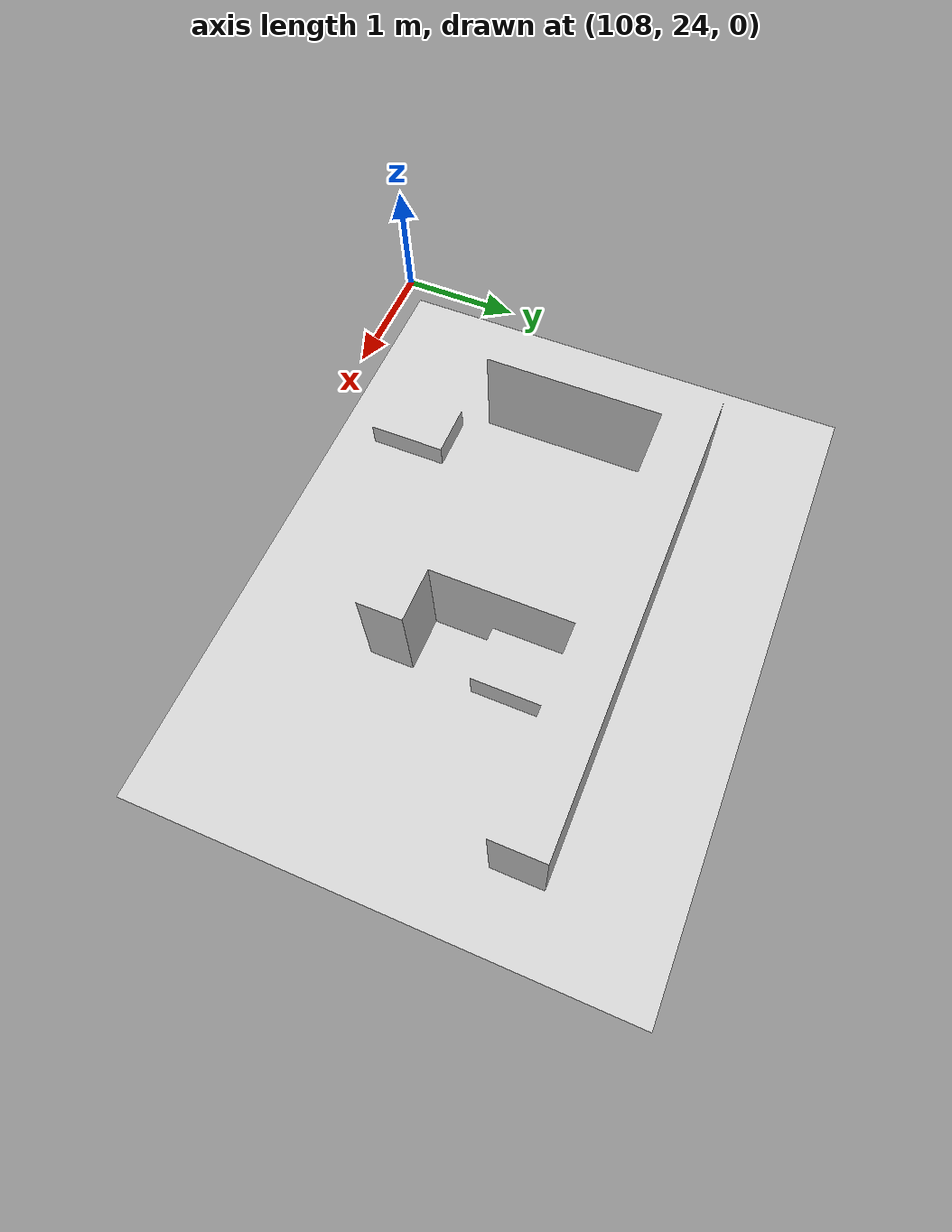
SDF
<sdf version='1.10'>
  <world name='default'>
    <physics name='1ms' type='ignored'>
      <max_step_size>0.001</max_step_size>
      <real_time_factor>1</real_time_factor>
      <real_time_update_rate>1000</real_time_update_rate>
    </physics>
    <plugin name='gz::sim::systems::Physics' filename='gz-sim-physics-system'/>
    <plugin name='gz::sim::systems::UserCommands' filename='gz-sim-user-commands-system'/>
    <plugin name='gz::sim::systems::SceneBroadcaster' filename='gz-sim-scene-broadcaster-system'/>
    <plugin name='gz::sim::systems::Contact' filename='gz-sim-contact-system'/>
    <gravity>0 0 -9.8000000000000007</gravity>
    <magnetic_field>5.5644999999999998e-06 2.2875799999999999e-05 -4.2388400000000002e-05</magnetic_field>
    <atmosphere type='adiabatic'/>
    <scene>
      <ambient>0.400000006 0.400000006 0.400000006 1</ambient>
      <background>0.699999988 0.699999988 0.699999988 1</background>
      <shadows>true</shadows>
    </scene>

    <!-- Vai a prendere le impostazioni di default da: ~/.gz/sim/8/gui.config -->

    <gui fullscreen='false'>

      <window>
        <position_x>-1</position_x>
        <position_y>-1</position_y>
        <state/>
        <width>1000</width>
        <height>845</height>
        <style material_theme='Light' material_primary='#ff5722' material_accent='#03a9f4'
              toolbar_color_light='#f3f3f3' toolbar_text_color_light='#111111'
              toolbar_color_dark='#414141' toolbar_text_color_dark='#f3f3f3'
              plugin_toolbar_color_light='' plugin_toolbar_text_color_light=''
              plugin_toolbar_color_dark='' plugin_toolbar_text_color_dark=''/>
        <menus>
          <drawer visible='true' default='false'/>
          <plugins visible='true' from_paths='true'/>
        </menus>
      </window>

      <plugin filename='MinimalScene' name='3D View'>
        <gz-gui>
          <title>3D View</title>
          <property key='x' type='double'>0</property>
          <property key='y' type='double'>0</property>
          <property key='z' type='double'>0</property>
          <property key='width' type='double'>581</property>
          <property key='height' type='double'>797</property>
          <property key='opacity' type='double'>1</property>
          <property key='enabled' type='bool'>true</property>
          <property key='visible' type='bool'>true</property>
          <property key='state' type='string'>docked</property>
          <property key='showTitleBar' type='bool'>false</property>
          <property key='resizable' type='bool'>true</property>
          <property key='standalone' type='bool'>false</property>
          <property key='cardBackground' type='string'>#00000000</property>
          <property key='pluginToolBarColor' type='string'>#bbdefb</property>
          <property key='pluginToolBarTextColor' type='string'>#111111</property>
        </gz-gui>
        <engine>ogre2</engine>
        <scene>scene</scene>
        <ambient_light>0.4 0.4 0.4</ambient_light>
        <background_color>0.8 0.8 0.8</background_color>
        <!-- ONLY this line changed from the original gui.config -->
        <camera_pose>109.98 27.59 150 0 1.5708 0</camera_pose>
      </plugin>

      <plugin filename='EntityContextMenuPlugin' name='Entity context menu'>
        <gz-gui>
          <property key='x' type='double'>0</property>
          <property key='y' type='double'>0</property>
          <property key='z' type='double'>0</property>
          <property key='width' type='double'>5</property>
          <property key='height' type='double'>5</property>
          <property key='state' type='string'>floating</property>
          <property key='showTitleBar' type='bool'>false</property>
          <property key='resizable' type='bool'>true</property>
          <property key='cardBackground' type='string'>#00000000</property>
          <property key='pluginToolBarColor' type='string'>#bbdefb</property>
          <property key='pluginToolBarTextColor' type='string'>#111111</property>
        </gz-gui>
      </plugin>

      <plugin filename='GzSceneManager' name='Scene Manager'>
        <gz-gui>
          <property key='x' type='double'>0</property>
          <property key='y' type='double'>0</property>
          <property key='z' type='double'>0</property>
          <property key='width' type='double'>5</property>
          <property key='height' type='double'>5</property>
          <property key='state' type='string'>floating</property>
          <property key='showTitleBar' type='bool'>false</property>
          <property key='resizable' type='bool'>false</property>
          <property key='cardBackground' type='string'>#00000000</property>
          <property key='pluginToolBarColor' type='string'>#bbdefb</property>
          <property key='pluginToolBarTextColor' type='string'>#111111</property>
        </gz-gui>
      </plugin>

      <plugin filename='InteractiveViewControl' name='Interactive view control'>
        <gz-gui>
          <property key='x' type='double'>0</property>
          <property key='y' type='double'>0</property>
          <property key='z' type='double'>0</property>
          <property key='width' type='double'>5</property>
          <property key='height' type='double'>5</property>
          <property key='state' type='string'>floating</property>
          <property key='showTitleBar' type='bool'>false</property>
          <property key='resizable' type='bool'>false</property>
          <property key='cardBackground' type='string'>#00000000</property>
          <property key='pluginToolBarColor' type='string'>#bbdefb</property>
          <property key='pluginToolBarTextColor' type='string'>#111111</property>
        </gz-gui>
      </plugin>

      <plugin filename='CameraTracking' name='Camera Tracking'>
        <gz-gui>
          <property key='x' type='double'>0</property>
          <property key='y' type='double'>0</property>
          <property key='z' type='double'>0</property>
          <property key='width' type='double'>5</property>
          <property key='height' type='double'>5</property>
          <property key='state' type='string'>floating</property>
          <property key='showTitleBar' type='bool'>false</property>
          <property key='resizable' type='bool'>false</property>
          <property key='cardBackground' type='string'>#00000000</property>
          <property key='pluginToolBarColor' type='string'>#bbdefb</property>
          <property key='pluginToolBarTextColor' type='string'>#111111</property>
        </gz-gui>
      </plugin>

      <plugin filename='MarkerManager' name='Marker manager'>
        <gz-gui>
          <property key='x' type='double'>0</property>
          <property key='y' type='double'>0</property>
          <property key='z' type='double'>0</property>
          <property key='width' type='double'>5</property>
          <property key='height' type='double'>5</property>
          <property key='state' type='string'>floating</property>
          <property key='showTitleBar' type='bool'>false</property>
          <property key='resizable' type='bool'>false</property>
          <property key='cardBackground' type='string'>#00000000</property>
          <property key='pluginToolBarColor' type='string'>#bbdefb</property>
          <property key='pluginToolBarTextColor' type='string'>#111111</property>
        </gz-gui>
      </plugin>

      <plugin filename='SelectEntities' name='Select Entities'>
        <gz-gui>
          <property key='x' type='double'>0</property>
          <property key='y' type='double'>0</property>
          <property key='z' type='double'>0</property>
          <property key='width' type='double'>5</property>
          <property key='height' type='double'>5</property>
          <property key='state' type='string'>floating</property>
          <property key='showTitleBar' type='bool'>false</property>
          <property key='resizable' type='bool'>false</property>
          <property key='cardBackground' type='string'>#00000000</property>
          <property key='pluginToolBarColor' type='string'>#bbdefb</property>
          <property key='pluginToolBarTextColor' type='string'>#111111</property>
        </gz-gui>
      </plugin>

      <plugin filename='Spawn' name='Spawn Entities'>
        <gz-gui>
          <property key='x' type='double'>0</property>
          <property key='y' type='double'>0</property>
          <property key='z' type='double'>0</property>
          <property key='width' type='double'>5</property>
          <property key='height' type='double'>5</property>
          <property key='state' type='string'>floating</property>
          <property key='showTitleBar' type='bool'>false</property>
          <property key='resizable' type='bool'>false</property>
          <property key='cardBackground' type='string'>#00000000</property>
          <property key='pluginToolBarColor' type='string'>#bbdefb</property>
          <property key='pluginToolBarTextColor' type='string'>#111111</property>
        </gz-gui>
      </plugin>

      <plugin filename='VisualizationCapabilities' name='Visualization Capabilities'>
        <gz-gui>
          <property key='x' type='double'>0</property>
          <property key='y' type='double'>0</property>
          <property key='z' type='double'>0</property>
          <property key='width' type='double'>5</property>
          <property key='height' type='double'>5</property>
          <property key='state' type='string'>floating</property>
          <property key='showTitleBar' type='bool'>false</property>
          <property key='resizable' type='bool'>false</property>
          <property key='cardBackground' type='string'>#00000000</property>
          <property key='pluginToolBarColor' type='string'>#bbdefb</property>
          <property key='pluginToolBarTextColor' type='string'>#111111</property>
        </gz-gui>
      </plugin>

      <plugin filename='WorldControl' name='World control'>
        <gz-gui>
          <title>World control</title>
          <anchors target='3D View'>
            <line own='left' target='left'/>
            <line own='bottom' target='bottom'/>
          </anchors>
          <property key='x' type='double'>0</property>
          <property key='y' type='double'>725</property>
          <property key='z' type='double'>1</property>
          <property key='width' type='double'>1199</property>
          <property key='height' type='double'>72</property>
          <property key='state' type='string'>floating</property>
          <property key='showTitleBar' type='bool'>false</property>
          <property key='resizable' type='bool'>false</property>
          <property key='cardBackground' type='string'>#00000000</property>
          <property key='pluginToolBarColor' type='string'>#bbdefb</property>
          <property key='pluginToolBarTextColor' type='string'>#111111</property>
        </gz-gui>
        <play_pause>true</play_pause>
        <step>true</step>
        <start_paused>true</start_paused>
        <use_event>true</use_event>
      </plugin>

      <plugin filename='WorldStats' name='World stats'>
        <gz-gui>
          <title>World stats</title>
          <anchors target='3D View'>
            <line own='right' target='right'/>
            <line own='bottom' target='bottom'/>
          </anchors>
          <property key='x' type='double'>291</property>
          <property key='y' type='double'>687</property>
          <property key='z' type='double'>1</property>
          <property key='width' type='double'>290</property>
          <property key='height' type='double'>110</property>
          <property key='state' type='string'>floating</property>
          <property key='showTitleBar' type='bool'>false</property>
          <property key='resizable' type='bool'>false</property>
          <property key='cardBackground' type='string'>#00000000</property>
          <property key='pluginToolBarColor' type='string'>#bbdefb</property>
          <property key='pluginToolBarTextColor' type='string'>#111111</property>
        </gz-gui>
        <sim_time>true</sim_time>
        <real_time>true</real_time>
        <real_time_factor>true</real_time_factor>
        <iterations>true</iterations>
      </plugin>

      <plugin filename='Shapes' name='Shapes'>
        <gz-gui>
          <property key='x' type='double'>0</property>
          <property key='y' type='double'>0</property>
          <property key='z' type='double'>0</property>
          <property key='width' type='double'>300</property>
          <property key='height' type='double'>50</property>
          <property key='state' type='string'>floating</property>
          <property key='showTitleBar' type='bool'>false</property>
          <property key='resizable' type='bool'>false</property>
          <property key='cardBackground' type='string'>#666666</property>
          <property key='pluginToolBarColor' type='string'>#bbdefb</property>
          <property key='pluginToolBarTextColor' type='string'>#111111</property>
        </gz-gui>
      </plugin>

      <plugin filename='Lights' name='Lights'>
        <gz-gui>
          <property key='x' type='double'>300</property>
          <property key='y' type='double'>0</property>
          <property key='z' type='double'>0</property>
          <property key='width' type='double'>150</property>
          <property key='height' type='double'>50</property>
          <property key='state' type='string'>floating</property>
          <property key='showTitleBar' type='bool'>false</property>
          <property key='resizable' type='bool'>false</property>
          <property key='cardBackground' type='string'>#666666</property>
          <property key='pluginToolBarColor' type='string'>#bbdefb</property>
          <property key='pluginToolBarTextColor' type='string'>#111111</property>
        </gz-gui>
      </plugin>

      <plugin filename='TransformControl' name='Transform control'>
        <gz-gui>
          <property key='x' type='double'>0</property>
          <property key='y' type='double'>50</property>
          <property key='z' type='double'>0</property>
          <property key='width' type='double'>250</property>
          <property key='height' type='double'>50</property>
          <property key='state' type='string'>floating</property>
          <property key='showTitleBar' type='bool'>false</property>
          <property key='resizable' type='bool'>false</property>
          <property key='cardBackground' type='string'>#777777</property>
          <property key='pluginToolBarColor' type='string'>#bbdefb</property>
          <property key='pluginToolBarTextColor' type='string'>#111111</property>
        </gz-gui>
      </plugin>

      <plugin filename='Screenshot' name='Screenshot'>
        <gz-gui>
          <property key='x' type='double'>250</property>
          <property key='y' type='double'>50</property>
          <property key='z' type='double'>0</property>
          <property key='width' type='double'>50</property>
          <property key='height' type='double'>50</property>
          <property key='state' type='string'>floating</property>
          <property key='showTitleBar' type='bool'>false</property>
          <property key='resizable' type='bool'>false</property>
          <property key='cardBackground' type='string'>#777777</property>
          <property key='pluginToolBarColor' type='string'>#bbdefb</property>
          <property key='pluginToolBarTextColor' type='string'>#111111</property>
        </gz-gui>
      </plugin>

      <plugin filename='CopyPaste' name='CopyPaste'>
        <gz-gui>
          <property key='x' type='double'>300</property>
          <property key='y' type='double'>50</property>
          <property key='z' type='double'>0</property>
          <property key='width' type='double'>100</property>
          <property key='height' type='double'>50</property>
          <property key='state' type='string'>floating</property>
          <property key='showTitleBar' type='bool'>false</property>
          <property key='resizable' type='bool'>false</property>
          <property key='cardBackground' type='string'>#777777</property>
          <property key='pluginToolBarColor' type='string'>#bbdefb</property>
          <property key='pluginToolBarTextColor' type='string'>#111111</property>
        </gz-gui>
      </plugin>

      <plugin filename='ComponentInspector' name='Component inspector'>
        <gz-gui>
          <property key='x' type='double'>0</property>
          <property key='y' type='double'>0</property>
          <property key='z' type='double'>0</property>
          <property key='width' type='double'>400</property>
          <property key='height' type='double'>375</property>
          <property key='state' type='string'>docked</property>
          <property key='showTitleBar' type='bool'>false</property>
          <property key='resizable' type='bool'>true</property>
          <property key='cardBackground' type='string'>#00000000</property>
          <property key='pluginToolBarColor' type='string'>#bbdefb</property>
          <property key='pluginToolBarTextColor' type='string'>#111111</property>
        </gz-gui>
      </plugin>

      <plugin filename='EntityTree' name='Entity tree'>
        <gz-gui>
          <property key='x' type='double'>0</property>
          <property key='y' type='double'>0</property>
          <property key='z' type='double'>0</property>
          <property key='width' type='double'>400</property>
          <property key='height' type='double'>421</property>
          <property key='state' type='string'>docked</property>
          <property key='showTitleBar' type='bool'>false</property>
          <property key='resizable' type='bool'>true</property>
          <property key='cardBackground' type='string'>#00000000</property>
          <property key='pluginToolBarColor' type='string'>#bbdefb</property>
          <property key='pluginToolBarTextColor' type='string'>#111111</property>
        </gz-gui>
      </plugin>

      <dialog name='quick_start' show_again='true'/>

    </gui>

    <include>
      <uri>file:///root/limo_ws/install/limo_description/share/limo_description/worlds/world_povo_resources</uri>
      <name>Povo</name>
      <pose>109.98 27.59 -0.20000000000000001 0 0 -1.5700000000000001</pose>
    </include>
    <light name='sun' type='directional'>
      <pose>0 0 10 0 0 0</pose>
      <cast_shadows>false</cast_shadows>
      <intensity>1</intensity>
      <direction>-0.5 0.10000000000000001 -0.90000000000000002</direction>
      <diffuse>0.800000012 0.800000012 0.800000012 1</diffuse>
      <specular>0.200000003 0.200000003 0.200000003 1</specular>
      <attenuation>
        <range>1000</range>
        <linear>0.01</linear>
        <constant>0.90000000000000002</constant>
        <quadratic>0.001</quadratic>
      </attenuation>
      <spot>
        <inner_angle>0</inner_angle>
        <outer_angle>0</outer_angle>
        <falloff>0</falloff>
      </spot>
    </light>
  </world>
</sdf>

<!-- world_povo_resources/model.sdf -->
<sdf version="1.5">
  <model name="Povo">
    <static>true</static>

    <link name="link">
      <collision name="collision">
        <geometry>
          <mesh>
            <!--for Povo-->
            <!--for Laboratory-->
            <uri>file:///root/limo_ws/install/limo_description/share/limo_description/worlds/world_povo_resources/meshes/World.stl</uri>
          </mesh>
        </geometry>
      </collision>

      <visual name="visual1">
        <geometry>
          <mesh>
            <!--for Povo-->
            <!--for Laboratory-->
            <uri>file:///root/limo_ws/install/limo_description/share/limo_description/worlds/world_povo_resources/meshes/World.stl</uri>
          </mesh>
        </geometry>

        <material>
          <ambient>0.3 0.3 0.3 1</ambient>
          <diffuse>0.8 0.8 0.8 1</diffuse>
          <specular>0.1 0.1 0.1 1</specular>
        </material>
      </visual>
    </link>
  </model>
</sdf>
